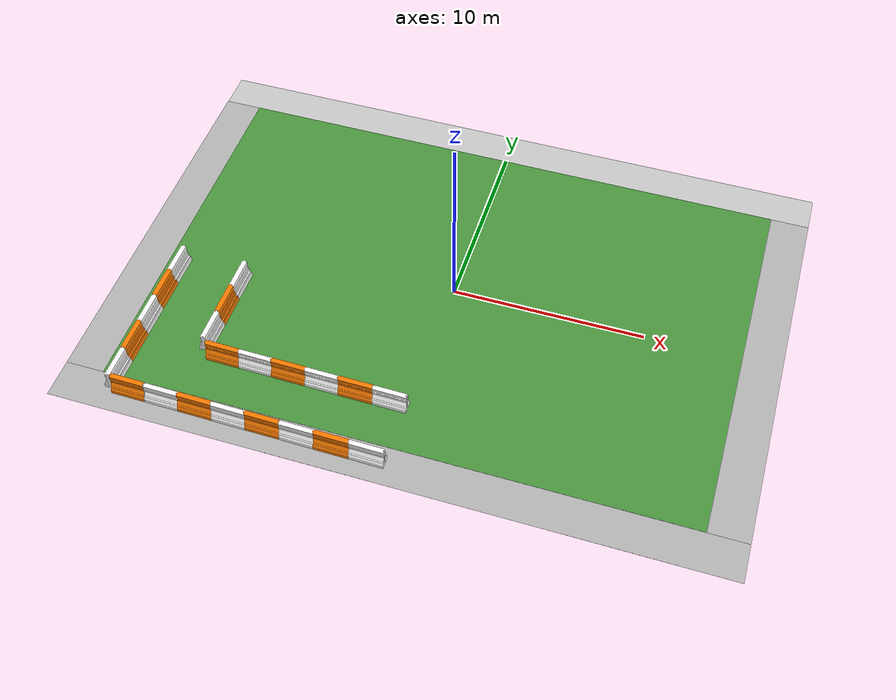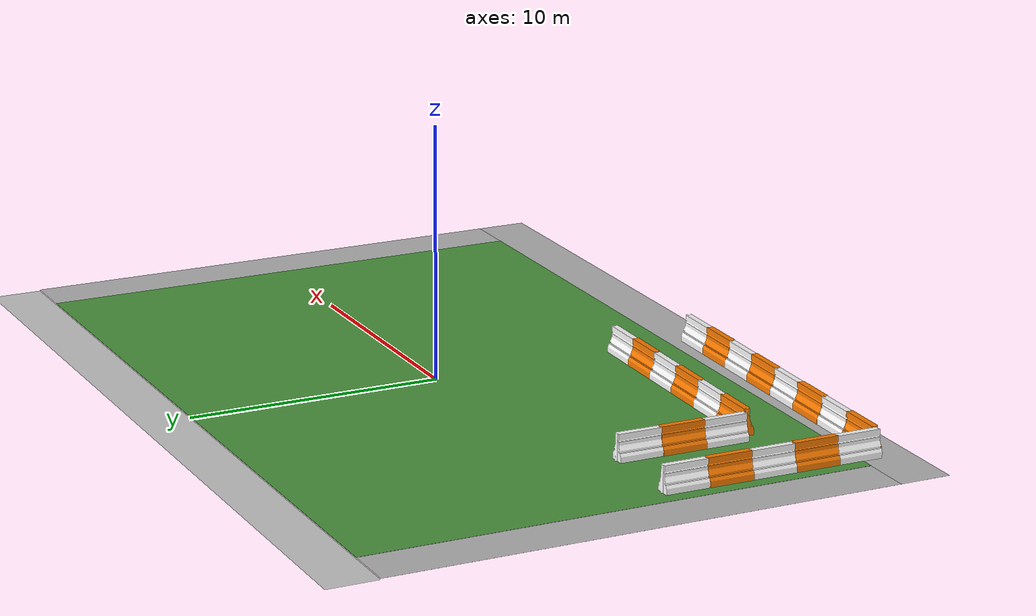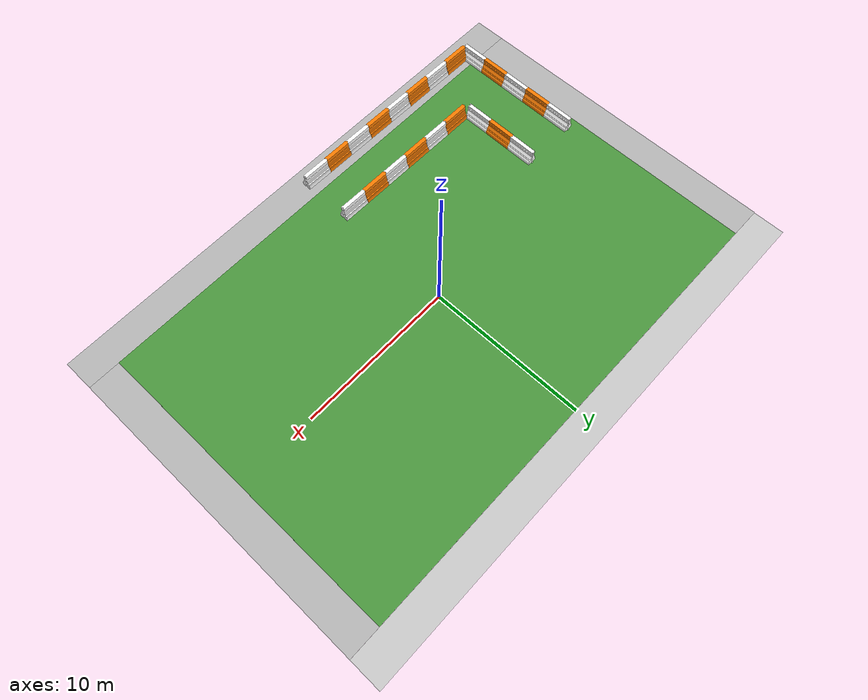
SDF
<sdf version="1.6">
 <world name="default">
  <light name="sun" type="directional">
   <pose>0 0 10 0 -0 0</pose>
   <diffuse>0.8 0.8 0.8 1</diffuse>
   <specular>0.2 0.2 0.2 1</specular>
   <attenuation>
    <range>1000</range>
    <constant>0.9</constant>
    <linear>0.01</linear>
    <quadratic>0.001</quadratic>
   </attenuation>
   <direction>-0.5 0.1 -0.9</direction>
   <spot><inner_angle>0</inner_angle><outer_angle>0</outer_angle><falloff>0</falloff></spot>
  </light>
  <gravity>0 0 -9.8</gravity>
  <magnetic_field>6e-06 2.3e-05 -4.2e-05</magnetic_field>
  <atmosphere type="adiabatic"/>
  <physics type="ode">
   <max_step_size>0.001</max_step_size>
   <real_time_factor>1</real_time_factor>
   <real_time_update_rate>1000</real_time_update_rate>
  </physics>
  <scene><ambient>0.4 0.4 0.4 1</ambient><background>0.7 0.7 0.7 1</background><shadows>1</shadows></scene>
  <spherical_coordinates>
   <surface_model>EARTH_WGS84</surface_model>
   <latitude_deg>0</latitude_deg>
   <longitude_deg>0</longitude_deg>
   <elevation>0</elevation>
   <heading_deg>0</heading_deg>
  </spherical_coordinates>
  <model name="robocup_3d_field">
   <static>1</static>
   <link name="field">
    <pose>0 0 0.01 0 -0 0</pose>
    <collision name="collision">
     <geometry><plane><normal>0 0 1</normal><size>30 20</size></plane></geometry>
     <surface><friction><ode><mu>100</mu><mu2>50</mu2></ode></friction></surface>
    </collision>
    <visual name="base1">
     <pose>0 11 0.001 0 -0 0</pose>
     <cast_shadows>0</cast_shadows>
     <geometry><plane><normal>0 0 1</normal><size>34 2</size></plane></geometry>
     <material>
      <script>
       <uri>model://robocup_3Dsim_field/materials/scripts/</uri>
       <uri>model://robocup_3Dsim_field/materials/textures/</uri>
       <name>RoboCup/FieldBorder</name>
      </script>
     </material>
    </visual>
    <visual name="base2">
     <pose>0 -11 0.001 0 -0 0</pose>
     <cast_shadows>0</cast_shadows>
     <geometry><plane><normal>0 0 1</normal><size>34 2</size></plane></geometry>
     <material>
      <script>
       <uri>model://robocup_3Dsim_field/materials/scripts/</uri>
       <uri>model://robocup_3Dsim_field/materials/textures/</uri>
       <name>RoboCup/FieldBorder</name>
      </script>
     </material>
    </visual>
    <visual name="base3">
     <pose>16 0 0.001 0 -0 0</pose>
     <cast_shadows>0</cast_shadows>
     <geometry><plane><normal>0 0 1</normal><size>2 20</size></plane></geometry>
     <material>
      <script>
       <uri>model://robocup_3Dsim_field/materials/scripts/</uri>
       <uri>model://robocup_3Dsim_field/materials/textures/</uri>
       <name>RoboCup/FieldBorder</name>
      </script>
     </material>
    </visual>
    <visual name="base4">
     <pose>-16 0 0.001 0 -0 0</pose>
     <cast_shadows>0</cast_shadows>
     <geometry><plane><normal>0 0 1</normal><size>2 20</size></plane></geometry>
     <material>
      <script>
       <uri>model://robocup_3Dsim_field/materials/scripts/</uri>
       <uri>model://robocup_3Dsim_field/materials/textures/</uri>
       <name>RoboCup/FieldBorder</name>
      </script>
     </material>
    </visual>
    <visual name="carpet">
     <cast_shadows>0</cast_shadows>
     <geometry><plane><normal>0 0 1</normal><size>30 20</size></plane></geometry>
     <material>
      <script>
       <uri>model://robocup_3Dsim_field/materials/scripts/</uri>
       <uri>model://robocup_3Dsim_field/materials/textures/</uri>
       <name>RoboCup/Grass</name>
      </script>
     </material>
    </visual>
   </link>
   <pose>-0.028401 -0.0367 0 0 -0 0</pose>
  </model>
  <model name="drc_practice_white_jersey_barrier">
   <static>1</static>
   <link name="link">
    <visual name="visual">
     <geometry>
      <mesh><uri>model://drc_practice_white_jersey_barrier/meshes/jersey_barrier.dae</uri></mesh>
     </geometry>
    </visual>
    <collision name="collision">
     <geometry>
      <mesh><uri>model://drc_practice_white_jersey_barrier/meshes/jersey_barrier.dae</uri></mesh>
     </geometry>
    </collision>
   </link>
   <pose>-0.856121 -7.65586 0.010861 0 0 -1.57879</pose>
  </model>
  <model name="drc_practice_organge_jersey_barrier">
   <static>1</static>
   <link name="link">
    <visual name="visual">
     <geometry>
      <mesh><uri>model://drc_practice_orange_jersey_barrier/meshes/jersey_barrier.dae</uri></mesh>
     </geometry>
    </visual>
    <collision name="collision">
     <geometry>
      <mesh><uri>model://drc_practice_orange_jersey_barrier/meshes/jersey_barrier.dae</uri></mesh>
     </geometry>
    </collision>
   </link>
   <pose>-2.60065 -7.63768 0.013561 0 0 -1.57503</pose>
  </model>
  <model name="drc_practice_white_jersey_barrier_clone">
   <static>1</static>
   <link name="link">
    <visual name="visual">
     <geometry>
      <mesh><uri>model://drc_practice_white_jersey_barrier/meshes/jersey_barrier.dae</uri></mesh>
     </geometry>
    </visual>
    <collision name="collision">
     <geometry>
      <mesh><uri>model://drc_practice_white_jersey_barrier/meshes/jersey_barrier.dae</uri></mesh>
     </geometry>
    </collision>
   </link>
   <pose>-0.882808 -10.8975 0.010861 0 0 -1.57879</pose>
  </model>
  <model name="drc_practice_organge_jersey_barrier_clone">
   <static>1</static>
   <link name="link">
    <visual name="visual">
     <geometry>
      <mesh><uri>model://drc_practice_orange_jersey_barrier/meshes/jersey_barrier.dae</uri></mesh>
     </geometry>
    </visual>
    <collision name="collision">
     <geometry>
      <mesh><uri>model://drc_practice_orange_jersey_barrier/meshes/jersey_barrier.dae</uri></mesh>
     </geometry>
    </collision>
   </link>
   <pose>-2.63152 -10.8809 0.013561 0 0 -1.57503</pose>
  </model>
  <model name="drc_practice_white_jersey_barrier_clone_0">
   <static>1</static>
   <link name="link">
    <visual name="visual">
     <geometry>
      <mesh><uri>model://drc_practice_white_jersey_barrier/meshes/jersey_barrier.dae</uri></mesh>
     </geometry>
    </visual>
    <collision name="collision">
     <geometry>
      <mesh><uri>model://drc_practice_white_jersey_barrier/meshes/jersey_barrier.dae</uri></mesh>
     </geometry>
    </collision>
   </link>
   <pose>-4.34474 -7.61571 0.010861 0 0 -1.57879</pose>
  </model>
  <model name="drc_practice_white_jersey_barrier_clone_1">
   <static>1</static>
   <link name="link">
    <visual name="visual">
     <geometry>
      <mesh><uri>model://drc_practice_white_jersey_barrier/meshes/jersey_barrier.dae</uri></mesh>
     </geometry>
    </visual>
    <collision name="collision">
     <geometry>
      <mesh><uri>model://drc_practice_white_jersey_barrier/meshes/jersey_barrier.dae</uri></mesh>
     </geometry>
    </collision>
   </link>
   <pose>-4.38375 -10.8622 0.010861 0 0 -1.57879</pose>
  </model>
  <model name="drc_practice_organge_jersey_barrier_clone_0">
   <static>1</static>
   <link name="link">
    <visual name="visual">
     <geometry>
      <mesh><uri>model://drc_practice_orange_jersey_barrier/meshes/jersey_barrier.dae</uri></mesh>
     </geometry>
    </visual>
    <collision name="collision">
     <geometry>
      <mesh><uri>model://drc_practice_orange_jersey_barrier/meshes/jersey_barrier.dae</uri></mesh>
     </geometry>
    </collision>
   </link>
   <pose>-6.08988 -7.59746 0.013561 0 0 -1.57503</pose>
  </model>
  <model name="drc_practice_organge_jersey_barrier_clone_1">
   <static>1</static>
   <link name="link">
    <visual name="visual">
     <geometry>
      <mesh><uri>model://drc_practice_orange_jersey_barrier/meshes/jersey_barrier.dae</uri></mesh>
     </geometry>
    </visual>
    <collision name="collision">
     <geometry>
      <mesh><uri>model://drc_practice_orange_jersey_barrier/meshes/jersey_barrier.dae</uri></mesh>
     </geometry>
    </collision>
   </link>
   <pose>-6.13302 -10.8405 0.013561 0 0 -1.57503</pose>
  </model>
  <model name="drc_practice_white_jersey_barrier_clone_0_clone">
   <static>1</static>
   <link name="link">
    <visual name="visual">
     <geometry>
      <mesh><uri>model://drc_practice_white_jersey_barrier/meshes/jersey_barrier.dae</uri></mesh>
     </geometry>
    </visual>
    <collision name="collision">
     <geometry>
      <mesh><uri>model://drc_practice_white_jersey_barrier/meshes/jersey_barrier.dae</uri></mesh>
     </geometry>
    </collision>
   </link>
   <pose>-7.84023 -7.57263 0.010861 0 0 -1.57879</pose>
  </model>
  <model name="drc_practice_white_jersey_barrier_clone_0_clone_0">
   <static>1</static>
   <link name="link">
    <visual name="visual">
     <geometry>
      <mesh><uri>model://drc_practice_white_jersey_barrier/meshes/jersey_barrier.dae</uri></mesh>
     </geometry>
    </visual>
    <collision name="collision">
     <geometry>
      <mesh><uri>model://drc_practice_white_jersey_barrier/meshes/jersey_barrier.dae</uri></mesh>
     </geometry>
    </collision>
   </link>
   <pose>-7.87511 -10.8304 0.010861 0 0 -1.57879</pose>
  </model>
  <model name="drc_practice_organge_jersey_barrier_clone_0_clone">
   <static>1</static>
   <link name="link">
    <visual name="visual">
     <geometry>
      <mesh><uri>model://drc_practice_orange_jersey_barrier/meshes/jersey_barrier.dae</uri></mesh>
     </geometry>
    </visual>
    <collision name="collision">
     <geometry>
      <mesh><uri>model://drc_practice_orange_jersey_barrier/meshes/jersey_barrier.dae</uri></mesh>
     </geometry>
    </collision>
   </link>
   <pose>-9.59367 -7.55642 0.013561 0 0 -1.57503</pose>
  </model>
  <model name="drc_practice_organge_jersey_barrier_clone_0_clone_0">
   <static>1</static>
   <link name="link">
    <visual name="visual">
     <geometry>
      <mesh><uri>model://drc_practice_orange_jersey_barrier/meshes/jersey_barrier.dae</uri></mesh>
     </geometry>
    </visual>
    <collision name="collision">
     <geometry>
      <mesh><uri>model://drc_practice_orange_jersey_barrier/meshes/jersey_barrier.dae</uri></mesh>
     </geometry>
    </collision>
   </link>
   <pose>-9.62584 -10.8048 0.013561 0 0 -1.57503</pose>
  </model>
  <model name="drc_practice_white_jersey_barrier_clone_0_clone_clone">
   <static>1</static>
   <link name="link">
    <visual name="visual">
     <geometry>
      <mesh><uri>model://drc_practice_white_jersey_barrier/meshes/jersey_barrier.dae</uri></mesh>
     </geometry>
    </visual>
    <collision name="collision">
     <geometry>
      <mesh><uri>model://drc_practice_white_jersey_barrier/meshes/jersey_barrier.dae</uri></mesh>
     </geometry>
    </collision>
   </link>
   <pose>-10.751 -6.4635 0.010861 0 -0 3.13839</pose>
  </model>
  <model name="drc_practice_white_jersey_barrier_clone_0_clone_0_clone">
   <static>1</static>
   <link name="link">
    <visual name="visual">
     <geometry>
      <mesh><uri>model://drc_practice_white_jersey_barrier/meshes/jersey_barrier.dae</uri></mesh>
     </geometry>
    </visual>
    <collision name="collision">
     <geometry>
      <mesh><uri>model://drc_practice_white_jersey_barrier/meshes/jersey_barrier.dae</uri></mesh>
     </geometry>
    </collision>
   </link>
   <pose>-11.3802 -10.7893 0.010861 0 0 -1.57879</pose>
  </model>
  <model name="drc_practice_organge_jersey_barrier_clone_0_clone_0_clone">
   <static>1</static>
   <link name="link">
    <visual name="visual">
     <geometry>
      <mesh><uri>model://drc_practice_orange_jersey_barrier/meshes/jersey_barrier.dae</uri></mesh>
     </geometry>
    </visual>
    <collision name="collision">
     <geometry>
      <mesh><uri>model://drc_practice_orange_jersey_barrier/meshes/jersey_barrier.dae</uri></mesh>
     </geometry>
    </collision>
   </link>
   <pose>-13.154 -10.7711 0.013561 0 0 -1.57503</pose>
  </model>
  <model name="drc_practice_white_jersey_barrier_clone_0_clone_clone_clone">
   <static>1</static>
   <link name="link">
    <visual name="visual">
     <geometry>
      <mesh><uri>model://drc_practice_white_jersey_barrier/meshes/jersey_barrier.dae</uri></mesh>
     </geometry>
    </visual>
    <collision name="collision">
     <geometry>
      <mesh><uri>model://drc_practice_white_jersey_barrier/meshes/jersey_barrier.dae</uri></mesh>
     </geometry>
    </collision>
   </link>
   <pose>-14.2158 -9.93081 0.010861 0 -0 3.13839</pose>
  </model>
  <model name="drc_practice_organge_jersey_barrier_clone_0_clone_0_clone_clone">
   <static>1</static>
   <link name="link">
    <visual name="visual">
     <geometry>
      <mesh><uri>model://drc_practice_orange_jersey_barrier/meshes/jersey_barrier.dae</uri></mesh>
     </geometry>
    </visual>
    <collision name="collision">
     <geometry>
      <mesh><uri>model://drc_practice_orange_jersey_barrier/meshes/jersey_barrier.dae</uri></mesh>
     </geometry>
    </collision>
   </link>
   <pose>-14.2081 -8.18538 0.013561 0 -0 3.13933</pose>
  </model>
  <model name="drc_practice_white_jersey_barrier_clone_0_clone_clone_clone_0">
   <static>1</static>
   <link name="link">
    <visual name="visual">
     <geometry>
      <mesh><uri>model://drc_practice_white_jersey_barrier/meshes/jersey_barrier.dae</uri></mesh>
     </geometry>
    </visual>
    <collision name="collision">
     <geometry>
      <mesh><uri>model://drc_practice_white_jersey_barrier/meshes/jersey_barrier.dae</uri></mesh>
     </geometry>
    </collision>
   </link>
   <pose>-14.198 -6.43412 0.010861 0 -0 3.13839</pose>
  </model>
  <model name="drc_practice_organge_jersey_barrier_clone_0_clone_0_clone_clone_clone">
   <static>1</static>
   <link name="link">
    <visual name="visual">
     <geometry>
      <mesh><uri>model://drc_practice_orange_jersey_barrier/meshes/jersey_barrier.dae</uri></mesh>
     </geometry>
    </visual>
    <collision name="collision">
     <geometry>
      <mesh><uri>model://drc_practice_orange_jersey_barrier/meshes/jersey_barrier.dae</uri></mesh>
     </geometry>
    </collision>
   </link>
   <pose>-14.1929 -4.68435 0.013561 0 -0 3.13933</pose>
  </model>
  <model name="drc_practice_organge_jersey_barrier_clone_0_clone_0_clone_clone_clone_0">
   <static>1</static>
   <link name="link">
    <visual name="visual">
     <geometry>
      <mesh><uri>model://drc_practice_orange_jersey_barrier/meshes/jersey_barrier.dae</uri></mesh>
     </geometry>
    </visual>
    <collision name="collision">
     <geometry>
      <mesh><uri>model://drc_practice_orange_jersey_barrier/meshes/jersey_barrier.dae</uri></mesh>
     </geometry>
    </collision>
   </link>
   <pose>-10.735 -4.71612 0.013561 0 -0 3.13933</pose>
  </model>
  <model name="drc_practice_white_jersey_barrier_clone_0_clone_clone_clone_1">
   <static>1</static>
   <link name="link">
    <visual name="visual">
     <geometry>
      <mesh><uri>model://drc_practice_white_jersey_barrier/meshes/jersey_barrier.dae</uri></mesh>
     </geometry>
    </visual>
    <collision name="collision">
     <geometry>
      <mesh><uri>model://drc_practice_white_jersey_barrier/meshes/jersey_barrier.dae</uri></mesh>
     </geometry>
    </collision>
   </link>
   <pose>-10.718 -2.9695 0.010861 0 -0 3.13839</pose>
  </model>
  <model name="drc_practice_white_jersey_barrier_clone_0_clone_clone_clone_2">
   <static>1</static>
   <link name="link">
    <visual name="visual">
     <geometry>
      <mesh><uri>model://drc_practice_white_jersey_barrier/meshes/jersey_barrier.dae</uri></mesh>
     </geometry>
    </visual>
    <collision name="collision">
     <geometry>
      <mesh><uri>model://drc_practice_white_jersey_barrier/meshes/jersey_barrier.dae</uri></mesh>
     </geometry>
    </collision>
   </link>
   <pose>-14.1811 -2.93658 0.010861 0 -0 3.13839</pose>
  </model>
 </world>
</sdf>
